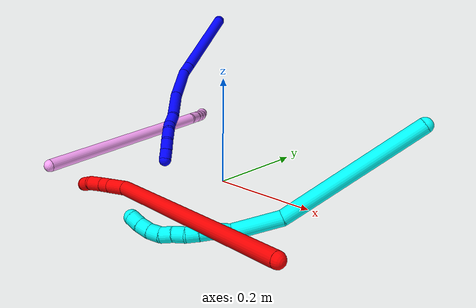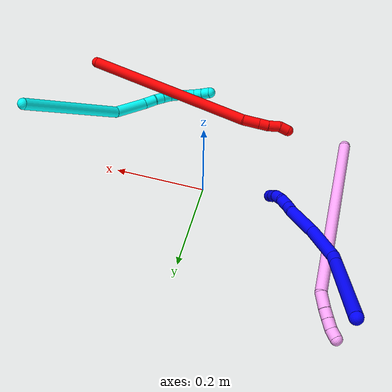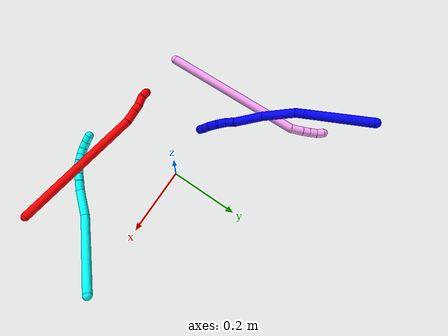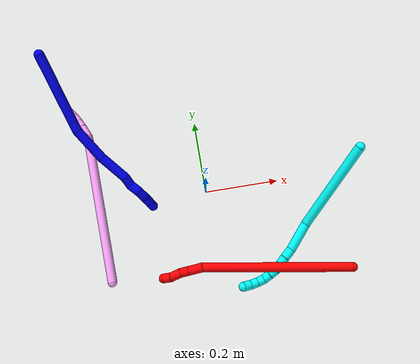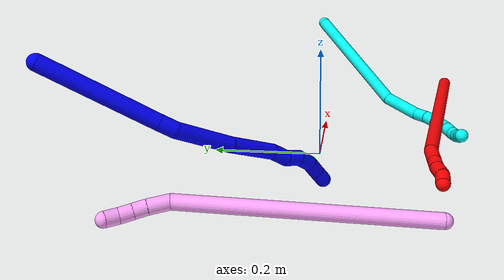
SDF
<sdf version="1.7">
 <world name="default">
  <plugin name="TubeGeneratorPlugin" filename="libtube_generator_plugin.so"/>
  <model name="photoneo_s_sensor">
   <static>1</static>
   <pose>0 0 2 1.57079 1.57079 3.14159</pose>
   <link name="link">
    <inertial><mass>0.1</mass></inertial>
    <sensor name="sensor" type="depth">
     <update_rate>30</update_rate>
     <camera>
      <horizontal_fov>1.22</horizontal_fov>
      <image><width>1920</width><height>1200</height><format>B8G8R8</format></image>
      <clip><near>0.1</near><far>4</far></clip>
      <depth_camera><output>points</output></depth_camera>
     </camera>
     <plugin name="camera_plugin" filename="libgazebo_ros_depth_camera.so">
      <baseline>0.2</baseline>
      <alwaysOn>1</alwaysOn>
      <updateRate>0.0</updateRate>
      <cameraName>camera_ir</cameraName>
      <imageTopicName>/camera/color/image_raw</imageTopicName>
      <cameraInfoTopicName>/camera/color/camera_info</cameraInfoTopicName>
      <depthImageTopicName>/camera/depth/image_raw</depthImageTopicName>
      <depthImageCameraInfoTopicName>/camera/depth/camera_info</depthImageCameraInfoTopicName>
      <pointCloudTopicName>/camera/depth/points</pointCloudTopicName>
      <frameName>fr_optical</frameName>
      <pointCloudCutoff>0.1</pointCloudCutoff>
      <pointCloudCutoffMax>2.0</pointCloudCutoffMax>
      <distortionK1>0</distortionK1>
      <distortionK2>0</distortionK2>
      <distortionK3>0</distortionK3>
      <distortionT1>0</distortionT1>
      <distortionT2>0</distortionT2>
      <CxPrime>0</CxPrime>
      <Cx>0</Cx>
      <Cy>0</Cy>
      <focalLength>0</focalLength>
      <hackBaseline>0</hackBaseline>
     </plugin>
    </sensor>
   </link>
  </model>
  <gravity>0 0 -9.8</gravity>
  <magnetic_field>6e-06 2.3e-05 -4.2e-05</magnetic_field>
  <atmosphere type="adiabatic"/>
  <physics name="default_physics" default="0" type="ode">
   <max_step_size>0.003</max_step_size>
   <real_time_factor>1</real_time_factor>
   <real_time_update_rate>1000</real_time_update_rate>
   <max_contacts>10000</max_contacts>
   <ode>
    <solver>
     <type>quick</type>
     <iters>100</iters>
     <sor>1.3</sor>
     <use_dynamic_moi_rescaling>0</use_dynamic_moi_rescaling>
    </solver>
    <constraints>
     <contact_max_correcting_vel>0</contact_max_correcting_vel>
     <contact_surface_layer>0.001</contact_surface_layer>
     <cfm>0</cfm>
     <erp>0.2</erp>
    </constraints>
   </ode>
  </physics>
  <scene><ambient>0.4 0.4 0.4 1</ambient><background>0.7 0.7 0.7 1</background><shadows>0</shadows></scene>
  <audio><device>default</device></audio>
  <spherical_coordinates>
   <surface_model>EARTH_WGS84</surface_model>
   <latitude_deg>0</latitude_deg>
   <longitude_deg>0</longitude_deg>
   <elevation>0</elevation>
   <heading_deg>0</heading_deg>
  </spherical_coordinates>
  <model name="bin">
   <static>1</static>
   <link name="bottom">
    <collision name="collision-bottom">
     <pose>0 0 -0.01 0 -0 0</pose>
     <geometry><box><size>0.8 0.6 0.02</size></box></geometry>
     <surface>
      <friction><ode><mu>100</mu><mu2>100</mu2></ode></friction>
      <contact><collide_bitmask>65535</collide_bitmask></contact>
     </surface>
    </collision>
   </link>
   <link name="west_wall">
    <collision name="collision-west_wall">
     <pose>-0.41 0 0.1 0 -0 0</pose>
     <geometry><box><size>0.02 0.6 0.2</size></box></geometry>
     <surface>
      <friction><ode><mu>100</mu><mu2>100</mu2></ode></friction>
      <contact><collide_bitmask>65535</collide_bitmask></contact>
     </surface>
    </collision>
   </link>
   <link name="east_wall">
    <collision name="collision-east_wall">
     <pose>0.41 0 0.1 0 -0 0</pose>
     <geometry><box><size>0.02 0.6 0.2</size></box></geometry>
     <surface>
      <friction><ode><mu>100</mu><mu2>100</mu2></ode></friction>
      <contact><collide_bitmask>65535</collide_bitmask></contact>
     </surface>
    </collision>
   </link>
   <link name="south_wall">
    <collision name="collision-south_wall">
     <pose>0 -0.31 0.1 0 -0 0</pose>
     <geometry><box><size>0.8 0.02 0.2</size></box></geometry>
     <surface>
      <friction><ode><mu>100</mu><mu2>100</mu2></ode></friction>
      <contact><collide_bitmask>65535</collide_bitmask></contact>
     </surface>
    </collision>
   </link>
   <link name="north_wall">
    <collision name="collision-north_wall">
     <pose>0 0.31 0.1 0 -0 0</pose>
     <geometry><box><size>0.8 0.02 0.2</size></box></geometry>
     <surface>
      <friction><ode><mu>100</mu><mu2>100</mu2></ode></friction>
      <contact><collide_bitmask>65535</collide_bitmask></contact>
     </surface>
    </collision>
   </link>
  </model>
  <model name="1">
   <static>0</static>
   <link name="1">
    <collision name="collision-cylinder-e_1_1_4">
     <pose>-0.060201 -0.0118 -0.066795 2.96674 -0.725888 -2.68795</pose>
     <geometry><cylinder><radius>0.0125</radius><length>0.181384</length></cylinder></geometry>
     <surface>
      <friction><ode><mu>1.16</mu><mu2>1.16</mu2><slip1>0</slip1><slip2>0</slip2></ode></friction>
      <contact><ode><kp>1e+06</kp><kd>1</kd><max_vel>0</max_vel><min_depth>0.001</min_depth></ode></contact>
     </surface>
    </collision>
    <visual name="visual-cylinder-e_1_1_4">
     <pose>-0.060201 -0.0118 -0.066795 2.96674 -0.725888 -2.68795</pose>
     <geometry><cylinder><radius>0.0125</radius><length>0.181384</length></cylinder></geometry>
     <material><ambient>0 0 1 1</ambient></material>
    </visual>
    <collision name="collision-cylinder-e_2_4_5">
     <pose>-0.129358 -0.025574 -0.143338 2.94168 -0.733058 -2.6305</pose>
     <geometry><cylinder><radius>0.0125</radius><length>0.026768</length></cylinder></geometry>
     <surface>
      <friction><ode><mu>1.16</mu><mu2>1.16</mu2><slip1>0</slip1><slip2>0</slip2></ode></friction>
      <contact><ode><kp>1e+06</kp><kd>1</kd><max_vel>0</max_vel><min_depth>0.001</min_depth></ode></contact>
     </surface>
    </collision>
    <visual name="visual-cylinder-e_2_4_5">
     <pose>-0.129358 -0.025574 -0.143338 2.94168 -0.733058 -2.6305</pose>
     <geometry><cylinder><radius>0.0125</radius><length>0.026768</length></cylinder></geometry>
     <material><ambient>0 0 1 1</ambient></material>
    </visual>
    <collision name="collision-cylinder-e_3_5_6">
     <pose>-0.162959 -0.046418 -0.186649 2.62946 -0.569361 -1.68183</pose>
     <geometry><cylinder><radius>0.0125</radius><length>0.091431</length></cylinder></geometry>
     <surface>
      <friction><ode><mu>1.16</mu><mu2>1.16</mu2><slip1>0</slip1><slip2>0</slip2></ode></friction>
      <contact><ode><kp>1e+06</kp><kd>1</kd><max_vel>0</max_vel><min_depth>0.001</min_depth></ode></contact>
     </surface>
    </collision>
    <visual name="visual-cylinder-e_3_5_6">
     <pose>-0.162959 -0.046418 -0.186649 2.62946 -0.569361 -1.68183</pose>
     <geometry><cylinder><radius>0.0125</radius><length>0.091431</length></cylinder></geometry>
     <material><ambient>0 0 1 1</ambient></material>
    </visual>
    <collision name="collision-cylinder-e_4_6_7">
     <pose>-0.205735 -0.085932 -0.248675 2.51401 -0.476094 -1.28409</pose>
     <geometry><cylinder><radius>0.0125</radius><length>0.079122</length></cylinder></geometry>
     <surface>
      <friction><ode><mu>1.16</mu><mu2>1.16</mu2><slip1>0</slip1><slip2>0</slip2></ode></friction>
      <contact><ode><kp>1e+06</kp><kd>1</kd><max_vel>0</max_vel><min_depth>0.001</min_depth></ode></contact>
     </surface>
    </collision>
    <visual name="visual-cylinder-e_4_6_7">
     <pose>-0.205735 -0.085932 -0.248675 2.51401 -0.476094 -1.28409</pose>
     <geometry><cylinder><radius>0.0125</radius><length>0.079122</length></cylinder></geometry>
     <material><ambient>0 0 1 1</ambient></material>
    </visual>
    <collision name="collision-cylinder-e_5_7_8">
     <pose>-0.23134 -0.109772 -0.287749 2.84935 -0.593353 -2.24424</pose>
     <geometry><cylinder><radius>0.0125</radius><length>0.026734</length></cylinder></geometry>
     <surface>
      <friction><ode><mu>1.16</mu><mu2>1.16</mu2><slip1>0</slip1><slip2>0</slip2></ode></friction>
      <contact><ode><kp>1e+06</kp><kd>1</kd><max_vel>0</max_vel><min_depth>0.001</min_depth></ode></contact>
     </surface>
    </collision>
    <visual name="visual-cylinder-e_5_7_8">
     <pose>-0.23134 -0.109772 -0.287749 2.84935 -0.593353 -2.24424</pose>
     <geometry><cylinder><radius>0.0125</radius><length>0.026734</length></cylinder></geometry>
     <material><ambient>0 0 1 1</ambient></material>
    </visual>
    <collision name="collision-cylinder-e_6_8_9">
     <pose>-0.244791 -0.120989 -0.305949 2.32821 -0.496013 -1.06297</pose>
     <geometry><cylinder><radius>0.0125</radius><length>0.025115</length></cylinder></geometry>
     <surface>
      <friction><ode><mu>1.16</mu><mu2>1.16</mu2><slip1>0</slip1><slip2>0</slip2></ode></friction>
      <contact><ode><kp>1e+06</kp><kd>1</kd><max_vel>0</max_vel><min_depth>0.001</min_depth></ode></contact>
     </surface>
    </collision>
    <visual name="visual-cylinder-e_6_8_9">
     <pose>-0.244791 -0.120989 -0.305949 2.32821 -0.496013 -1.06297</pose>
     <geometry><cylinder><radius>0.0125</radius><length>0.025115</length></cylinder></geometry>
     <material><ambient>0 0 1 1</ambient></material>
    </visual>
    <collision name="collision-cylinder-e_7_9_10">
     <pose>-0.25598 -0.133292 -0.324777 2.77796 -0.408971 -1.69097</pose>
     <geometry><cylinder><radius>0.0125</radius><length>0.026217</length></cylinder></geometry>
     <surface>
      <friction><ode><mu>1.16</mu><mu2>1.16</mu2><slip1>0</slip1><slip2>0</slip2></ode></friction>
      <contact><ode><kp>1e+06</kp><kd>1</kd><max_vel>0</max_vel><min_depth>0.001</min_depth></ode></contact>
     </surface>
    </collision>
    <visual name="visual-cylinder-e_7_9_10">
     <pose>-0.25598 -0.133292 -0.324777 2.77796 -0.408971 -1.69097</pose>
     <geometry><cylinder><radius>0.0125</radius><length>0.026217</length></cylinder></geometry>
     <material><ambient>0 0 1 1</ambient></material>
    </visual>
    <collision name="collision-cylinder-e_8_10_11">
     <pose>-0.264106 -0.138352 -0.346789 3.06906 -0.263524 -2.60715</pose>
     <geometry><cylinder><radius>0.0125</radius><length>0.022371</length></cylinder></geometry>
     <surface>
      <friction><ode><mu>1.16</mu><mu2>1.16</mu2><slip1>0</slip1><slip2>0</slip2></ode></friction>
      <contact><ode><kp>1e+06</kp><kd>1</kd><max_vel>0</max_vel><min_depth>0.001</min_depth></ode></contact>
     </surface>
    </collision>
    <visual name="visual-cylinder-e_8_10_11">
     <pose>-0.264106 -0.138352 -0.346789 3.06906 -0.263524 -2.60715</pose>
     <geometry><cylinder><radius>0.0125</radius><length>0.022371</length></cylinder></geometry>
     <material><ambient>0 0 1 1</ambient></material>
    </visual>
    <collision name="collision-cylinder-e_9_11_2">
     <pose>-0.270119 -0.139818 -0.367495 3.07294 -0.301704 -2.69723</pose>
     <geometry><cylinder><radius>0.0125</radius><length>0.020858</length></cylinder></geometry>
     <surface>
      <friction><ode><mu>1.16</mu><mu2>1.16</mu2><slip1>0</slip1><slip2>0</slip2></ode></friction>
      <contact><ode><kp>1e+06</kp><kd>1</kd><max_vel>0</max_vel><min_depth>0.001</min_depth></ode></contact>
     </surface>
    </collision>
    <visual name="visual-cylinder-e_9_11_2">
     <pose>-0.270119 -0.139818 -0.367495 3.07294 -0.301704 -2.69723</pose>
     <geometry><cylinder><radius>0.0125</radius><length>0.020858</length></cylinder></geometry>
     <material><ambient>0 0 1 1</ambient></material>
    </visual>
    <collision name="collision-sphere-2">
     <pose>-0.273218 -0.140501 -0.37743 0 -0 0</pose>
     <geometry><sphere><radius>0.0125</radius></sphere></geometry>
     <surface>
      <friction><ode><mu>1.16</mu><mu2>1.16</mu2><slip1>0</slip1><slip2>0</slip2></ode></friction>
      <contact><ode><kp>1e+06</kp><kd>1</kd><max_vel>0</max_vel><min_depth>0.001</min_depth></ode></contact>
     </surface>
    </collision>
    <visual name="visual-sphere-2">
     <pose>-0.273218 -0.140501 -0.37743 0 -0 0</pose>
     <geometry><sphere><radius>0.0125</radius></sphere></geometry>
     <material><ambient>0 0 1 1</ambient></material>
    </visual>
    <collision name="collision-sphere-11">
     <pose>-0.26702 -0.139135 -0.357561 0 -0 0</pose>
     <geometry><sphere><radius>0.0125</radius></sphere></geometry>
     <surface>
      <friction><ode><mu>1.16</mu><mu2>1.16</mu2><slip1>0</slip1><slip2>0</slip2></ode></friction>
      <contact><ode><kp>1e+06</kp><kd>1</kd><max_vel>0</max_vel><min_depth>0.001</min_depth></ode></contact>
     </surface>
    </collision>
    <visual name="visual-sphere-11">
     <pose>-0.26702 -0.139135 -0.357561 0 -0 0</pose>
     <geometry><sphere><radius>0.0125</radius></sphere></geometry>
     <material><ambient>0 0 1 1</ambient></material>
    </visual>
    <collision name="collision-sphere-10">
     <pose>-0.261193 -0.13757 -0.336018 0 -0 0</pose>
     <geometry><sphere><radius>0.0125</radius></sphere></geometry>
     <surface>
      <friction><ode><mu>1.16</mu><mu2>1.16</mu2><slip1>0</slip1><slip2>0</slip2></ode></friction>
      <contact><ode><kp>1e+06</kp><kd>1</kd><max_vel>0</max_vel><min_depth>0.001</min_depth></ode></contact>
     </surface>
    </collision>
    <visual name="visual-sphere-10">
     <pose>-0.261193 -0.13757 -0.336018 0 -0 0</pose>
     <geometry><sphere><radius>0.0125</radius></sphere></geometry>
     <material><ambient>0 0 1 1</ambient></material>
    </visual>
    <collision name="collision-sphere-9">
     <pose>-0.250767 -0.129014 -0.313537 0 -0 0</pose>
     <geometry><sphere><radius>0.0125</radius></sphere></geometry>
     <surface>
      <friction><ode><mu>1.16</mu><mu2>1.16</mu2><slip1>0</slip1><slip2>0</slip2></ode></friction>
      <contact><ode><kp>1e+06</kp><kd>1</kd><max_vel>0</max_vel><min_depth>0.001</min_depth></ode></contact>
     </surface>
    </collision>
    <visual name="visual-sphere-9">
     <pose>-0.250767 -0.129014 -0.313537 0 -0 0</pose>
     <geometry><sphere><radius>0.0125</radius></sphere></geometry>
     <material><ambient>0 0 1 1</ambient></material>
    </visual>
    <collision name="collision-sphere-4">
     <pose>-0.120402 -0.023599 -0.13359 0 -0 0</pose>
     <geometry><sphere><radius>0.0125</radius></sphere></geometry>
     <surface>
      <friction><ode><mu>1.16</mu><mu2>1.16</mu2><slip1>0</slip1><slip2>0</slip2></ode></friction>
      <contact><ode><kp>1e+06</kp><kd>1</kd><max_vel>0</max_vel><min_depth>0.001</min_depth></ode></contact>
     </surface>
    </collision>
    <visual name="visual-sphere-4">
     <pose>-0.120402 -0.023599 -0.13359 0 -0 0</pose>
     <geometry><sphere><radius>0.0125</radius></sphere></geometry>
     <material><ambient>0 0 1 1</ambient></material>
    </visual>
    <collision name="collision-sphere-1">
     <geometry><sphere><radius>0.0125</radius></sphere></geometry>
     <surface>
      <friction><ode><mu>1.16</mu><mu2>1.16</mu2><slip1>0</slip1><slip2>0</slip2></ode></friction>
      <contact><ode><kp>1e+06</kp><kd>1</kd><max_vel>0</max_vel><min_depth>0.001</min_depth></ode></contact>
     </surface>
    </collision>
    <visual name="visual-sphere-1">
     <geometry><sphere><radius>0.0125</radius></sphere></geometry>
     <material><ambient>0 0 1 1</ambient></material>
    </visual>
    <collision name="collision-sphere-8">
     <pose>-0.238815 -0.112965 -0.298361 0 -0 0</pose>
     <geometry><sphere><radius>0.0125</radius></sphere></geometry>
     <surface>
      <friction><ode><mu>1.16</mu><mu2>1.16</mu2><slip1>0</slip1><slip2>0</slip2></ode></friction>
      <contact><ode><kp>1e+06</kp><kd>1</kd><max_vel>0</max_vel><min_depth>0.001</min_depth></ode></contact>
     </surface>
    </collision>
    <visual name="visual-sphere-8">
     <pose>-0.238815 -0.112965 -0.298361 0 -0 0</pose>
     <geometry><sphere><radius>0.0125</radius></sphere></geometry>
     <material><ambient>0 0 1 1</ambient></material>
    </visual>
    <collision name="collision-sphere-5">
     <pose>-0.138314 -0.027549 -0.153086 0 -0 0</pose>
     <geometry><sphere><radius>0.0125</radius></sphere></geometry>
     <surface>
      <friction><ode><mu>1.16</mu><mu2>1.16</mu2><slip1>0</slip1><slip2>0</slip2></ode></friction>
      <contact><ode><kp>1e+06</kp><kd>1</kd><max_vel>0</max_vel><min_depth>0.001</min_depth></ode></contact>
     </surface>
    </collision>
    <visual name="visual-sphere-5">
     <pose>-0.138314 -0.027549 -0.153086 0 -0 0</pose>
     <geometry><sphere><radius>0.0125</radius></sphere></geometry>
     <material><ambient>0 0 1 1</ambient></material>
    </visual>
    <collision name="collision-sphere-6">
     <pose>-0.187604 -0.065286 -0.220213 0 -0 0</pose>
     <geometry><sphere><radius>0.0125</radius></sphere></geometry>
     <surface>
      <friction><ode><mu>1.16</mu><mu2>1.16</mu2><slip1>0</slip1><slip2>0</slip2></ode></friction>
      <contact><ode><kp>1e+06</kp><kd>1</kd><max_vel>0</max_vel><min_depth>0.001</min_depth></ode></contact>
     </surface>
    </collision>
    <visual name="visual-sphere-6">
     <pose>-0.187604 -0.065286 -0.220213 0 -0 0</pose>
     <geometry><sphere><radius>0.0125</radius></sphere></geometry>
     <material><ambient>0 0 1 1</ambient></material>
    </visual>
    <collision name="collision-sphere-7">
     <pose>-0.223866 -0.106579 -0.277136 0 -0 0</pose>
     <geometry><sphere><radius>0.0125</radius></sphere></geometry>
     <surface>
      <friction><ode><mu>1.16</mu><mu2>1.16</mu2><slip1>0</slip1><slip2>0</slip2></ode></friction>
      <contact><ode><kp>1e+06</kp><kd>1</kd><max_vel>0</max_vel><min_depth>0.001</min_depth></ode></contact>
     </surface>
    </collision>
    <visual name="visual-sphere-7">
     <pose>-0.223866 -0.106579 -0.277136 0 -0 0</pose>
     <geometry><sphere><radius>0.0125</radius></sphere></geometry>
     <material><ambient>0 0 1 1</ambient></material>
    </visual>
    <inertial>
     <pose>-0.152292 -0.058695 -0.184017 0 -0 0</pose>
     <mass>0.5</mass>
     <inertia>
      <ixx>-0.000628</ixx>
      <ixy>0</ixy>
      <ixz>0</ixz>
      <iyy>0.000227</iyy>
      <iyz>0</iyz>
      <izz>0.000488</izz>
     </inertia>
    </inertial>
   </link>
   <pose>-0.350702 0.357313 0.249099 -0.469916 0.122059 1.29734</pose>
  </model>
  <model name="2">
   <static>0</static>
   <link name="2">
    <collision name="collision-cylinder-e_1_1_4">
     <pose>-0.018978 -0.015448 -0.19371 3.06201 -0.097352 -1.77127</pose>
     <geometry><cylinder><radius>0.0125</radius><length>0.3905</length></cylinder></geometry>
     <surface>
      <friction><ode><mu>1.16</mu><mu2>1.16</mu2><slip1>0</slip1><slip2>0</slip2></ode></friction>
      <contact><ode><kp>1e+06</kp><kd>1</kd><max_vel>0</max_vel><min_depth>0.001</min_depth></ode></contact>
     </surface>
    </collision>
    <visual name="visual-cylinder-e_1_1_4">
     <pose>-0.018978 -0.015448 -0.19371 3.06201 -0.097352 -1.77127</pose>
     <geometry><cylinder><radius>0.0125</radius><length>0.3905</length></cylinder></geometry>
     <material><ambient>1 0 0 1</ambient></material>
    </visual>
    <collision name="collision-cylinder-e_2_4_5">
     <pose>-0.041378 -0.02791 -0.406144 -2.98343 -0.178553 1.69235</pose>
     <geometry><cylinder><radius>0.0125</radius><length>0.038532</length></cylinder></geometry>
     <surface>
      <friction><ode><mu>1.16</mu><mu2>1.16</mu2><slip1>0</slip1><slip2>0</slip2></ode></friction>
      <contact><ode><kp>1e+06</kp><kd>1</kd><max_vel>0</max_vel><min_depth>0.001</min_depth></ode></contact>
     </surface>
    </collision>
    <visual name="visual-cylinder-e_2_4_5">
     <pose>-0.041378 -0.02791 -0.406144 -2.98343 -0.178553 1.69235</pose>
     <geometry><cylinder><radius>0.0125</radius><length>0.038532</length></cylinder></geometry>
     <material><ambient>1 0 0 1</ambient></material>
    </visual>
    <collision name="collision-cylinder-e_3_5_6">
     <pose>-0.046714 -0.02324 -0.435592 -2.98583 -0.174545 1.68491</pose>
     <geometry><cylinder><radius>0.0125</radius><length>0.022047</length></cylinder></geometry>
     <surface>
      <friction><ode><mu>1.16</mu><mu2>1.16</mu2><slip1>0</slip1><slip2>0</slip2></ode></friction>
      <contact><ode><kp>1e+06</kp><kd>1</kd><max_vel>0</max_vel><min_depth>0.001</min_depth></ode></contact>
     </surface>
    </collision>
    <visual name="visual-cylinder-e_3_5_6">
     <pose>-0.046714 -0.02324 -0.435592 -2.98583 -0.174545 1.68491</pose>
     <geometry><cylinder><radius>0.0125</radius><length>0.022047</length></cylinder></geometry>
     <material><ambient>1 0 0 1</ambient></material>
    </visual>
    <collision name="collision-cylinder-e_4_6_7">
     <pose>-0.050467 -0.016963 -0.45912 -2.79718 -0.134404 0.738428</pose>
     <geometry><cylinder><radius>0.0125</radius><length>0.027451</length></cylinder></geometry>
     <surface>
      <friction><ode><mu>1.16</mu><mu2>1.16</mu2><slip1>0</slip1><slip2>0</slip2></ode></friction>
      <contact><ode><kp>1e+06</kp><kd>1</kd><max_vel>0</max_vel><min_depth>0.001</min_depth></ode></contact>
     </surface>
    </collision>
    <visual name="visual-cylinder-e_4_6_7">
     <pose>-0.050467 -0.016963 -0.45912 -2.79718 -0.134404 0.738428</pose>
     <geometry><cylinder><radius>0.0125</radius><length>0.027451</length></cylinder></geometry>
     <material><ambient>1 0 0 1</ambient></material>
    </visual>
    <collision name="collision-cylinder-e_5_7_2">
     <pose>-0.056359 -0.012053 -0.481858 -3.10965 -0.387045 2.97896</pose>
     <geometry><cylinder><radius>0.0125</radius><length>0.021469</length></cylinder></geometry>
     <surface>
      <friction><ode><mu>1.16</mu><mu2>1.16</mu2><slip1>0</slip1><slip2>0</slip2></ode></friction>
      <contact><ode><kp>1e+06</kp><kd>1</kd><max_vel>0</max_vel><min_depth>0.001</min_depth></ode></contact>
     </surface>
    </collision>
    <visual name="visual-cylinder-e_5_7_2">
     <pose>-0.056359 -0.012053 -0.481858 -3.10965 -0.387045 2.97896</pose>
     <geometry><cylinder><radius>0.0125</radius><length>0.021469</length></cylinder></geometry>
     <material><ambient>1 0 0 1</ambient></material>
    </visual>
    <collision name="collision-sphere-2">
     <pose>-0.06041 -0.011736 -0.491794 0 -0 0</pose>
     <geometry><sphere><radius>0.0125</radius></sphere></geometry>
     <surface>
      <friction><ode><mu>1.16</mu><mu2>1.16</mu2><slip1>0</slip1><slip2>0</slip2></ode></friction>
      <contact><ode><kp>1e+06</kp><kd>1</kd><max_vel>0</max_vel><min_depth>0.001</min_depth></ode></contact>
     </surface>
    </collision>
    <visual name="visual-sphere-2">
     <pose>-0.06041 -0.011736 -0.491794 0 -0 0</pose>
     <geometry><sphere><radius>0.0125</radius></sphere></geometry>
     <material><ambient>1 0 0 1</ambient></material>
    </visual>
    <collision name="collision-sphere-7">
     <pose>-0.052307 -0.012371 -0.471923 0 -0 0</pose>
     <geometry><sphere><radius>0.0125</radius></sphere></geometry>
     <surface>
      <friction><ode><mu>1.16</mu><mu2>1.16</mu2><slip1>0</slip1><slip2>0</slip2></ode></friction>
      <contact><ode><kp>1e+06</kp><kd>1</kd><max_vel>0</max_vel><min_depth>0.001</min_depth></ode></contact>
     </surface>
    </collision>
    <visual name="visual-sphere-7">
     <pose>-0.052307 -0.012371 -0.471923 0 -0 0</pose>
     <geometry><sphere><radius>0.0125</radius></sphere></geometry>
     <material><ambient>1 0 0 1</ambient></material>
    </visual>
    <collision name="collision-sphere-6">
     <pose>-0.048628 -0.021556 -0.446317 0 -0 0</pose>
     <geometry><sphere><radius>0.0125</radius></sphere></geometry>
     <surface>
      <friction><ode><mu>1.16</mu><mu2>1.16</mu2><slip1>0</slip1><slip2>0</slip2></ode></friction>
      <contact><ode><kp>1e+06</kp><kd>1</kd><max_vel>0</max_vel><min_depth>0.001</min_depth></ode></contact>
     </surface>
    </collision>
    <visual name="visual-sphere-6">
     <pose>-0.048628 -0.021556 -0.446317 0 -0 0</pose>
     <geometry><sphere><radius>0.0125</radius></sphere></geometry>
     <material><ambient>1 0 0 1</ambient></material>
    </visual>
    <collision name="collision-sphere-5">
     <pose>-0.0448 -0.024924 -0.424867 0 -0 0</pose>
     <geometry><sphere><radius>0.0125</radius></sphere></geometry>
     <surface>
      <friction><ode><mu>1.16</mu><mu2>1.16</mu2><slip1>0</slip1><slip2>0</slip2></ode></friction>
      <contact><ode><kp>1e+06</kp><kd>1</kd><max_vel>0</max_vel><min_depth>0.001</min_depth></ode></contact>
     </surface>
    </collision>
    <visual name="visual-sphere-5">
     <pose>-0.0448 -0.024924 -0.424867 0 -0 0</pose>
     <geometry><sphere><radius>0.0125</radius></sphere></geometry>
     <material><ambient>1 0 0 1</ambient></material>
    </visual>
    <collision name="collision-sphere-1">
     <geometry><sphere><radius>0.0125</radius></sphere></geometry>
     <surface>
      <friction><ode><mu>1.16</mu><mu2>1.16</mu2><slip1>0</slip1><slip2>0</slip2></ode></friction>
      <contact><ode><kp>1e+06</kp><kd>1</kd><max_vel>0</max_vel><min_depth>0.001</min_depth></ode></contact>
     </surface>
    </collision>
    <visual name="visual-sphere-1">
     <geometry><sphere><radius>0.0125</radius></sphere></geometry>
     <material><ambient>1 0 0 1</ambient></material>
    </visual>
    <collision name="collision-sphere-4">
     <pose>-0.037956 -0.030896 -0.387421 0 -0 0</pose>
     <geometry><sphere><radius>0.0125</radius></sphere></geometry>
     <surface>
      <friction><ode><mu>1.16</mu><mu2>1.16</mu2><slip1>0</slip1><slip2>0</slip2></ode></friction>
      <contact><ode><kp>1e+06</kp><kd>1</kd><max_vel>0</max_vel><min_depth>0.001</min_depth></ode></contact>
     </surface>
    </collision>
    <visual name="visual-sphere-4">
     <pose>-0.037956 -0.030896 -0.387421 0 -0 0</pose>
     <geometry><sphere><radius>0.0125</radius></sphere></geometry>
     <material><ambient>1 0 0 1</ambient></material>
    </visual>
    <inertial>
     <pose>-0.025261 -0.01669 -0.247691 0 -0 0</pose>
     <mass>0.5</mass>
     <inertia>
      <ixx>-0.005836</ixx>
      <ixy>0</ixy>
      <ixz>0</ixz>
      <iyy>-0.003819</iyy>
      <iyz>0</iyz>
      <izz>0.000839</izz>
     </inertia>
    </inertial>
   </link>
   <pose>0.342555 -0.264782 0.055402 2.09764 -1.49756 0.955053</pose>
  </model>
  <model name="3">
   <static>0</static>
   <link name="3">
    <collision name="collision-cylinder-e_1_1_4">
     <pose>-0.089358 -0.087679 7.6e-05 1.56993 -0.794879 -0.794257</pose>
     <geometry><cylinder><radius>0.0125</radius><length>0.250379</length></cylinder></geometry>
     <surface>
      <friction><ode><mu>1.16</mu><mu2>1.16</mu2><slip1>0</slip1><slip2>0</slip2></ode></friction>
      <contact><ode><kp>1e+06</kp><kd>1</kd><max_vel>0</max_vel><min_depth>0.001</min_depth></ode></contact>
     </surface>
    </collision>
    <visual name="visual-cylinder-e_1_1_4">
     <pose>-0.089358 -0.087679 7.6e-05 1.56993 -0.794879 -0.794257</pose>
     <geometry><cylinder><radius>0.0125</radius><length>0.250379</length></cylinder></geometry>
     <material><ambient>0.003922 1 0.996078 1</ambient></material>
    </visual>
    <collision name="collision-cylinder-e_2_4_5">
     <pose>-0.214852 -0.191668 0.005107 1.27588 -1.13003 -0.878694</pose>
     <geometry><cylinder><radius>0.0125</radius><length>0.079911</length></cylinder></geometry>
     <surface>
      <friction><ode><mu>1.16</mu><mu2>1.16</mu2><slip1>0</slip1><slip2>0</slip2></ode></friction>
      <contact><ode><kp>1e+06</kp><kd>1</kd><max_vel>0</max_vel><min_depth>0.001</min_depth></ode></contact>
     </surface>
    </collision>
    <visual name="visual-cylinder-e_2_4_5">
     <pose>-0.214852 -0.191668 0.005107 1.27588 -1.13003 -0.878694</pose>
     <geometry><cylinder><radius>0.0125</radius><length>0.079911</length></cylinder></geometry>
     <material><ambient>0.003922 1 0.996078 1</ambient></material>
    </visual>
    <collision name="collision-cylinder-e_3_5_6">
     <pose>-0.264729 -0.210202 0.010316 1.45701 -1.40933 -1.29804</pose>
     <geometry><cylinder><radius>0.0125</radius><length>0.027844</length></cylinder></geometry>
     <surface>
      <friction><ode><mu>1.16</mu><mu2>1.16</mu2><slip1>0</slip1><slip2>0</slip2></ode></friction>
      <contact><ode><kp>1e+06</kp><kd>1</kd><max_vel>0</max_vel><min_depth>0.001</min_depth></ode></contact>
     </surface>
    </collision>
    <visual name="visual-cylinder-e_3_5_6">
     <pose>-0.264729 -0.210202 0.010316 1.45701 -1.40933 -1.29804</pose>
     <geometry><cylinder><radius>0.0125</radius><length>0.027844</length></cylinder></geometry>
     <material><ambient>0.003922 1 0.996078 1</ambient></material>
    </visual>
    <collision name="collision-cylinder-e_4_6_7">
     <pose>-0.288055 -0.215715 0.010941 1.45863 -1.23826 -1.13413</pose>
     <geometry><cylinder><radius>0.0125</radius><length>0.020279</length></cylinder></geometry>
     <surface>
      <friction><ode><mu>1.16</mu><mu2>1.16</mu2><slip1>0</slip1><slip2>0</slip2></ode></friction>
      <contact><ode><kp>1e+06</kp><kd>1</kd><max_vel>0</max_vel><min_depth>0.001</min_depth></ode></contact>
     </surface>
    </collision>
    <visual name="visual-cylinder-e_4_6_7">
     <pose>-0.288055 -0.215715 0.010941 1.45863 -1.23826 -1.13413</pose>
     <geometry><cylinder><radius>0.0125</radius><length>0.020279</length></cylinder></geometry>
     <material><ambient>0.003922 1 0.996078 1</ambient></material>
    </visual>
    <collision name="collision-cylinder-e_5_7_8">
     <pose>-0.307414 -0.222054 0.011359 1.55498 -1.26838 -1.25331</pose>
     <geometry><cylinder><radius>0.0125</radius><length>0.020479</length></cylinder></geometry>
     <surface>
      <friction><ode><mu>1.16</mu><mu2>1.16</mu2><slip1>0</slip1><slip2>0</slip2></ode></friction>
      <contact><ode><kp>1e+06</kp><kd>1</kd><max_vel>0</max_vel><min_depth>0.001</min_depth></ode></contact>
     </surface>
    </collision>
    <visual name="visual-cylinder-e_5_7_8">
     <pose>-0.307414 -0.222054 0.011359 1.55498 -1.26838 -1.25331</pose>
     <geometry><cylinder><radius>0.0125</radius><length>0.020479</length></cylinder></geometry>
     <material><ambient>0.003922 1 0.996078 1</ambient></material>
    </visual>
    <collision name="collision-cylinder-e_6_8_9">
     <pose>-0.326711 -0.227127 0.009087 2.42457 -1.25803 -2.19047</pose>
     <geometry><cylinder><radius>0.0125</radius><length>0.020016</length></cylinder></geometry>
     <surface>
      <friction><ode><mu>1.16</mu><mu2>1.16</mu2><slip1>0</slip1><slip2>0</slip2></ode></friction>
      <contact><ode><kp>1e+06</kp><kd>1</kd><max_vel>0</max_vel><min_depth>0.001</min_depth></ode></contact>
     </surface>
    </collision>
    <visual name="visual-cylinder-e_6_8_9">
     <pose>-0.326711 -0.227127 0.009087 2.42457 -1.25803 -2.19047</pose>
     <geometry><cylinder><radius>0.0125</radius><length>0.020016</length></cylinder></geometry>
     <material><ambient>0.003922 1 0.996078 1</ambient></material>
    </visual>
    <collision name="collision-cylinder-e_7_9_10">
     <pose>-0.345321 -0.232356 0.004063 2.27116 -1.13855 -1.88495</pose>
     <geometry><cylinder><radius>0.0125</radius><length>0.020015</length></cylinder></geometry>
     <surface>
      <friction><ode><mu>1.16</mu><mu2>1.16</mu2><slip1>0</slip1><slip2>0</slip2></ode></friction>
      <contact><ode><kp>1e+06</kp><kd>1</kd><max_vel>0</max_vel><min_depth>0.001</min_depth></ode></contact>
     </surface>
    </collision>
    <visual name="visual-cylinder-e_7_9_10">
     <pose>-0.345321 -0.232356 0.004063 2.27116 -1.13855 -1.88495</pose>
     <geometry><cylinder><radius>0.0125</radius><length>0.020015</length></cylinder></geometry>
     <material><ambient>0.003922 1 0.996078 1</ambient></material>
    </visual>
    <collision name="collision-cylinder-e_8_10_11">
     <pose>-0.363822 -0.235642 -0.002897 3.12256 -1.14595 -3.1121</pose>
     <geometry><cylinder><radius>0.0125</radius><length>0.020666</length></cylinder></geometry>
     <surface>
      <friction><ode><mu>1.16</mu><mu2>1.16</mu2><slip1>0</slip1><slip2>0</slip2></ode></friction>
      <contact><ode><kp>1e+06</kp><kd>1</kd><max_vel>0</max_vel><min_depth>0.001</min_depth></ode></contact>
     </surface>
    </collision>
    <visual name="visual-cylinder-e_8_10_11">
     <pose>-0.363822 -0.235642 -0.002897 3.12256 -1.14595 -3.1121</pose>
     <geometry><cylinder><radius>0.0125</radius><length>0.020666</length></cylinder></geometry>
     <material><ambient>0.003922 1 0.996078 1</ambient></material>
    </visual>
    <collision name="collision-cylinder-e_9_11_12">
     <pose>-0.38198 -0.23368 -0.011774 -2.72506 -1.04697 2.43965</pose>
     <geometry><cylinder><radius>0.0125</radius><length>0.020196</length></cylinder></geometry>
     <surface>
      <friction><ode><mu>1.16</mu><mu2>1.16</mu2><slip1>0</slip1><slip2>0</slip2></ode></friction>
      <contact><ode><kp>1e+06</kp><kd>1</kd><max_vel>0</max_vel><min_depth>0.001</min_depth></ode></contact>
     </surface>
    </collision>
    <visual name="visual-cylinder-e_9_11_12">
     <pose>-0.38198 -0.23368 -0.011774 -2.72506 -1.04697 2.43965</pose>
     <geometry><cylinder><radius>0.0125</radius><length>0.020196</length></cylinder></geometry>
     <material><ambient>0.003922 1 0.996078 1</ambient></material>
    </visual>
    <collision name="collision-cylinder-e_10_12_2">
     <pose>-0.398855 -0.228343 -0.021414 -2.56101 -0.934696 2.0726</pose>
     <geometry><cylinder><radius>0.0125</radius><length>0.020215</length></cylinder></geometry>
     <surface>
      <friction><ode><mu>1.16</mu><mu2>1.16</mu2><slip1>0</slip1><slip2>0</slip2></ode></friction>
      <contact><ode><kp>1e+06</kp><kd>1</kd><max_vel>0</max_vel><min_depth>0.001</min_depth></ode></contact>
     </surface>
    </collision>
    <visual name="visual-cylinder-e_10_12_2">
     <pose>-0.398855 -0.228343 -0.021414 -2.56101 -0.934696 2.0726</pose>
     <geometry><cylinder><radius>0.0125</radius><length>0.020215</length></cylinder></geometry>
     <material><ambient>0.003922 1 0.996078 1</ambient></material>
    </visual>
    <collision name="collision-sphere-2">
     <pose>-0.406986 -0.225049 -0.026434 0 -0 0</pose>
     <geometry><sphere><radius>0.0125</radius></sphere></geometry>
     <surface>
      <friction><ode><mu>1.16</mu><mu2>1.16</mu2><slip1>0</slip1><slip2>0</slip2></ode></friction>
      <contact><ode><kp>1e+06</kp><kd>1</kd><max_vel>0</max_vel><min_depth>0.001</min_depth></ode></contact>
     </surface>
    </collision>
    <visual name="visual-sphere-2">
     <pose>-0.406986 -0.225049 -0.026434 0 -0 0</pose>
     <geometry><sphere><radius>0.0125</radius></sphere></geometry>
     <material><ambient>0.003922 1 0.996078 1</ambient></material>
    </visual>
    <collision name="collision-sphere-12">
     <pose>-0.390724 -0.231636 -0.016393 0 -0 0</pose>
     <geometry><sphere><radius>0.0125</radius></sphere></geometry>
     <surface>
      <friction><ode><mu>1.16</mu><mu2>1.16</mu2><slip1>0</slip1><slip2>0</slip2></ode></friction>
      <contact><ode><kp>1e+06</kp><kd>1</kd><max_vel>0</max_vel><min_depth>0.001</min_depth></ode></contact>
     </surface>
    </collision>
    <visual name="visual-sphere-12">
     <pose>-0.390724 -0.231636 -0.016393 0 -0 0</pose>
     <geometry><sphere><radius>0.0125</radius></sphere></geometry>
     <material><ambient>0.003922 1 0.996078 1</ambient></material>
    </visual>
    <collision name="collision-sphere-11">
     <pose>-0.373237 -0.235723 -0.007155 0 -0 0</pose>
     <geometry><sphere><radius>0.0125</radius></sphere></geometry>
     <surface>
      <friction><ode><mu>1.16</mu><mu2>1.16</mu2><slip1>0</slip1><slip2>0</slip2></ode></friction>
      <contact><ode><kp>1e+06</kp><kd>1</kd><max_vel>0</max_vel><min_depth>0.001</min_depth></ode></contact>
     </surface>
    </collision>
    <visual name="visual-sphere-11">
     <pose>-0.373237 -0.235723 -0.007155 0 -0 0</pose>
     <geometry><sphere><radius>0.0125</radius></sphere></geometry>
     <material><ambient>0.003922 1 0.996078 1</ambient></material>
    </visual>
    <collision name="collision-sphere-10">
     <pose>-0.354408 -0.235561 0.001362 0 -0 0</pose>
     <geometry><sphere><radius>0.0125</radius></sphere></geometry>
     <surface>
      <friction><ode><mu>1.16</mu><mu2>1.16</mu2><slip1>0</slip1><slip2>0</slip2></ode></friction>
      <contact><ode><kp>1e+06</kp><kd>1</kd><max_vel>0</max_vel><min_depth>0.001</min_depth></ode></contact>
     </surface>
    </collision>
    <visual name="visual-sphere-10">
     <pose>-0.354408 -0.235561 0.001362 0 -0 0</pose>
     <geometry><sphere><radius>0.0125</radius></sphere></geometry>
     <material><ambient>0.003922 1 0.996078 1</ambient></material>
    </visual>
    <collision name="collision-sphere-9">
     <pose>-0.336234 -0.22915 0.006765 0 -0 0</pose>
     <geometry><sphere><radius>0.0125</radius></sphere></geometry>
     <surface>
      <friction><ode><mu>1.16</mu><mu2>1.16</mu2><slip1>0</slip1><slip2>0</slip2></ode></friction>
      <contact><ode><kp>1e+06</kp><kd>1</kd><max_vel>0</max_vel><min_depth>0.001</min_depth></ode></contact>
     </surface>
    </collision>
    <visual name="visual-sphere-9">
     <pose>-0.336234 -0.22915 0.006765 0 -0 0</pose>
     <geometry><sphere><radius>0.0125</radius></sphere></geometry>
     <material><ambient>0.003922 1 0.996078 1</ambient></material>
    </visual>
    <collision name="collision-sphere-4">
     <pose>-0.178715 -0.175358 0.000153 0 -0 0</pose>
     <geometry><sphere><radius>0.0125</radius></sphere></geometry>
     <surface>
      <friction><ode><mu>1.16</mu><mu2>1.16</mu2><slip1>0</slip1><slip2>0</slip2></ode></friction>
      <contact><ode><kp>1e+06</kp><kd>1</kd><max_vel>0</max_vel><min_depth>0.001</min_depth></ode></contact>
     </surface>
    </collision>
    <visual name="visual-sphere-4">
     <pose>-0.178715 -0.175358 0.000153 0 -0 0</pose>
     <geometry><sphere><radius>0.0125</radius></sphere></geometry>
     <material><ambient>0.003922 1 0.996078 1</ambient></material>
    </visual>
    <collision name="collision-sphere-1">
     <geometry><sphere><radius>0.0125</radius></sphere></geometry>
     <surface>
      <friction><ode><mu>1.16</mu><mu2>1.16</mu2><slip1>0</slip1><slip2>0</slip2></ode></friction>
      <contact><ode><kp>1e+06</kp><kd>1</kd><max_vel>0</max_vel><min_depth>0.001</min_depth></ode></contact>
     </surface>
    </collision>
    <visual name="visual-sphere-1">
     <geometry><sphere><radius>0.0125</radius></sphere></geometry>
     <material><ambient>0.003922 1 0.996078 1</ambient></material>
    </visual>
    <collision name="collision-sphere-8">
     <pose>-0.317189 -0.225103 0.011408 0 -0 0</pose>
     <geometry><sphere><radius>0.0125</radius></sphere></geometry>
     <surface>
      <friction><ode><mu>1.16</mu><mu2>1.16</mu2><slip1>0</slip1><slip2>0</slip2></ode></friction>
      <contact><ode><kp>1e+06</kp><kd>1</kd><max_vel>0</max_vel><min_depth>0.001</min_depth></ode></contact>
     </surface>
    </collision>
    <visual name="visual-sphere-8">
     <pose>-0.317189 -0.225103 0.011408 0 -0 0</pose>
     <geometry><sphere><radius>0.0125</radius></sphere></geometry>
     <material><ambient>0.003922 1 0.996078 1</ambient></material>
    </visual>
    <collision name="collision-sphere-5">
     <pose>-0.250988 -0.207979 0.010062 0 -0 0</pose>
     <geometry><sphere><radius>0.0125</radius></sphere></geometry>
     <surface>
      <friction><ode><mu>1.16</mu><mu2>1.16</mu2><slip1>0</slip1><slip2>0</slip2></ode></friction>
      <contact><ode><kp>1e+06</kp><kd>1</kd><max_vel>0</max_vel><min_depth>0.001</min_depth></ode></contact>
     </surface>
    </collision>
    <visual name="visual-sphere-5">
     <pose>-0.250988 -0.207979 0.010062 0 -0 0</pose>
     <geometry><sphere><radius>0.0125</radius></sphere></geometry>
     <material><ambient>0.003922 1 0.996078 1</ambient></material>
    </visual>
    <collision name="collision-sphere-6">
     <pose>-0.27847 -0.212426 0.01057 0 -0 0</pose>
     <geometry><sphere><radius>0.0125</radius></sphere></geometry>
     <surface>
      <friction><ode><mu>1.16</mu><mu2>1.16</mu2><slip1>0</slip1><slip2>0</slip2></ode></friction>
      <contact><ode><kp>1e+06</kp><kd>1</kd><max_vel>0</max_vel><min_depth>0.001</min_depth></ode></contact>
     </surface>
    </collision>
    <visual name="visual-sphere-6">
     <pose>-0.27847 -0.212426 0.01057 0 -0 0</pose>
     <geometry><sphere><radius>0.0125</radius></sphere></geometry>
     <material><ambient>0.003922 1 0.996078 1</ambient></material>
    </visual>
    <collision name="collision-sphere-7">
     <pose>-0.297639 -0.219005 0.011311 0 -0 0</pose>
     <geometry><sphere><radius>0.0125</radius></sphere></geometry>
     <surface>
      <friction><ode><mu>1.16</mu><mu2>1.16</mu2><slip1>0</slip1><slip2>0</slip2></ode></friction>
      <contact><ode><kp>1e+06</kp><kd>1</kd><max_vel>0</max_vel><min_depth>0.001</min_depth></ode></contact>
     </surface>
    </collision>
    <visual name="visual-sphere-7">
     <pose>-0.297639 -0.219005 0.011311 0 -0 0</pose>
     <geometry><sphere><radius>0.0125</radius></sphere></geometry>
     <material><ambient>0.003922 1 0.996078 1</ambient></material>
    </visual>
    <inertial>
     <pose>-0.191595 -0.150892 0.001403 0 -0 0</pose>
     <mass>0.5</mass>
     <inertia>
      <ixx>-4.9e-05</ixx>
      <ixy>0</ixy>
      <ixz>0</ixz>
      <iyy>3.1e-05</iyy>
      <iyz>0</iyz>
      <izz>0.001935</izz>
     </inertia>
    </inertial>
   </link>
   <pose>0.388503 0.018078 0.183815 1.42086 0.16373 0.693967</pose>
  </model>
  <model name="4">
   <static>0</static>
   <link name="4">
    <collision name="collision-cylinder-e_1_1_4">
     <pose>-0.097425 0.118194 0.130064 -0.737623 -0.506177 0.199261</pose>
     <geometry><cylinder><radius>0.0125</radius><length>0.401887</length></cylinder></geometry>
     <surface>
      <friction><ode><mu>1.16</mu><mu2>1.16</mu2><slip1>0</slip1><slip2>0</slip2></ode></friction>
      <contact><ode><kp>1e+06</kp><kd>1</kd><max_vel>0</max_vel><min_depth>0.001</min_depth></ode></contact>
     </surface>
    </collision>
    <visual name="visual-cylinder-e_1_1_4">
     <pose>-0.097425 0.118194 0.130064 -0.737623 -0.506177 0.199261</pose>
     <geometry><cylinder><radius>0.0125</radius><length>0.401887</length></cylinder></geometry>
     <material><ambient>1 0.65098 0.996078 1</ambient></material>
    </visual>
    <collision name="collision-cylinder-e_2_4_5">
     <pose>-0.198451 0.250901 0.268854 -1.02944 -0.209583 0.11883</pose>
     <geometry><cylinder><radius>0.0125</radius><length>0.034623</length></cylinder></geometry>
     <surface>
      <friction><ode><mu>1.16</mu><mu2>1.16</mu2><slip1>0</slip1><slip2>0</slip2></ode></friction>
      <contact><ode><kp>1e+06</kp><kd>1</kd><max_vel>0</max_vel><min_depth>0.001</min_depth></ode></contact>
     </surface>
    </collision>
    <visual name="visual-cylinder-e_2_4_5">
     <pose>-0.198451 0.250901 0.268854 -1.02944 -0.209583 0.11883</pose>
     <geometry><cylinder><radius>0.0125</radius><length>0.034623</length></cylinder></geometry>
     <material><ambient>1 0.65098 0.996078 1</ambient></material>
    </visual>
    <collision name="collision-cylinder-e_3_5_6">
     <pose>-0.203405 0.274469 0.282498 -1.07327 -0.130419 0.077653</pose>
     <geometry><cylinder><radius>0.0125</radius><length>0.020788</length></cylinder></geometry>
     <surface>
      <friction><ode><mu>1.16</mu><mu2>1.16</mu2><slip1>0</slip1><slip2>0</slip2></ode></friction>
      <contact><ode><kp>1e+06</kp><kd>1</kd><max_vel>0</max_vel><min_depth>0.001</min_depth></ode></contact>
     </surface>
    </collision>
    <visual name="visual-cylinder-e_3_5_6">
     <pose>-0.203405 0.274469 0.282498 -1.07327 -0.130419 0.077653</pose>
     <geometry><cylinder><radius>0.0125</radius><length>0.020788</length></cylinder></geometry>
     <material><ambient>1 0.65098 0.996078 1</ambient></material>
    </visual>
    <collision name="collision-cylinder-e_4_6_7">
     <pose>-0.206151 0.292988 0.292331 -1.09175 -0.130043 0.079065</pose>
     <geometry><cylinder><radius>0.0125</radius><length>0.021507</length></cylinder></geometry>
     <surface>
      <friction><ode><mu>1.16</mu><mu2>1.16</mu2><slip1>0</slip1><slip2>0</slip2></ode></friction>
      <contact><ode><kp>1e+06</kp><kd>1</kd><max_vel>0</max_vel><min_depth>0.001</min_depth></ode></contact>
     </surface>
    </collision>
    <visual name="visual-cylinder-e_4_6_7">
     <pose>-0.206151 0.292988 0.292331 -1.09175 -0.130043 0.079065</pose>
     <geometry><cylinder><radius>0.0125</radius><length>0.021507</length></cylinder></geometry>
     <material><ambient>1 0.65098 0.996078 1</ambient></material>
    </visual>
    <collision name="collision-cylinder-e_5_7_2">
     <pose>-0.209379 0.312503 0.300054 -1.29836 -0.173913 0.132126</pose>
     <geometry><cylinder><radius>0.0125</radius><length>0.021195</length></cylinder></geometry>
     <surface>
      <friction><ode><mu>1.16</mu><mu2>1.16</mu2><slip1>0</slip1><slip2>0</slip2></ode></friction>
      <contact><ode><kp>1e+06</kp><kd>1</kd><max_vel>0</max_vel><min_depth>0.001</min_depth></ode></contact>
     </surface>
    </collision>
    <visual name="visual-cylinder-e_5_7_2">
     <pose>-0.209379 0.312503 0.300054 -1.29836 -0.173913 0.132126</pose>
     <geometry><cylinder><radius>0.0125</radius><length>0.021195</length></cylinder></geometry>
     <material><ambient>1 0.65098 0.996078 1</ambient></material>
    </visual>
    <collision name="collision-sphere-2">
     <pose>-0.211213 0.322555 0.302863 0 -0 0</pose>
     <geometry><sphere><radius>0.0125</radius></sphere></geometry>
     <surface>
      <friction><ode><mu>1.16</mu><mu2>1.16</mu2><slip1>0</slip1><slip2>0</slip2></ode></friction>
      <contact><ode><kp>1e+06</kp><kd>1</kd><max_vel>0</max_vel><min_depth>0.001</min_depth></ode></contact>
     </surface>
    </collision>
    <visual name="visual-sphere-2">
     <pose>-0.211213 0.322555 0.302863 0 -0 0</pose>
     <geometry><sphere><radius>0.0125</radius></sphere></geometry>
     <material><ambient>1 0.65098 0.996078 1</ambient></material>
    </visual>
    <collision name="collision-sphere-7">
     <pose>-0.207545 0.30245 0.297246 0 -0 0</pose>
     <geometry><sphere><radius>0.0125</radius></sphere></geometry>
     <surface>
      <friction><ode><mu>1.16</mu><mu2>1.16</mu2><slip1>0</slip1><slip2>0</slip2></ode></friction>
      <contact><ode><kp>1e+06</kp><kd>1</kd><max_vel>0</max_vel><min_depth>0.001</min_depth></ode></contact>
     </surface>
    </collision>
    <visual name="visual-sphere-7">
     <pose>-0.207545 0.30245 0.297246 0 -0 0</pose>
     <geometry><sphere><radius>0.0125</radius></sphere></geometry>
     <material><ambient>1 0.65098 0.996078 1</ambient></material>
    </visual>
    <collision name="collision-sphere-6">
     <pose>-0.204757 0.283525 0.287416 0 -0 0</pose>
     <geometry><sphere><radius>0.0125</radius></sphere></geometry>
     <surface>
      <friction><ode><mu>1.16</mu><mu2>1.16</mu2><slip1>0</slip1><slip2>0</slip2></ode></friction>
      <contact><ode><kp>1e+06</kp><kd>1</kd><max_vel>0</max_vel><min_depth>0.001</min_depth></ode></contact>
     </surface>
    </collision>
    <visual name="visual-sphere-6">
     <pose>-0.204757 0.283525 0.287416 0 -0 0</pose>
     <geometry><sphere><radius>0.0125</radius></sphere></geometry>
     <material><ambient>1 0.65098 0.996078 1</ambient></material>
    </visual>
    <collision name="collision-sphere-5">
     <pose>-0.202053 0.265412 0.277579 0 -0 0</pose>
     <geometry><sphere><radius>0.0125</radius></sphere></geometry>
     <surface>
      <friction><ode><mu>1.16</mu><mu2>1.16</mu2><slip1>0</slip1><slip2>0</slip2></ode></friction>
      <contact><ode><kp>1e+06</kp><kd>1</kd><max_vel>0</max_vel><min_depth>0.001</min_depth></ode></contact>
     </surface>
    </collision>
    <visual name="visual-sphere-5">
     <pose>-0.202053 0.265412 0.277579 0 -0 0</pose>
     <geometry><sphere><radius>0.0125</radius></sphere></geometry>
     <material><ambient>1 0.65098 0.996078 1</ambient></material>
    </visual>
    <collision name="collision-sphere-1">
     <geometry><sphere><radius>0.0125</radius></sphere></geometry>
     <surface>
      <friction><ode><mu>1.16</mu><mu2>1.16</mu2><slip1>0</slip1><slip2>0</slip2></ode></friction>
      <contact><ode><kp>1e+06</kp><kd>1</kd><max_vel>0</max_vel><min_depth>0.001</min_depth></ode></contact>
     </surface>
    </collision>
    <visual name="visual-sphere-1">
     <geometry><sphere><radius>0.0125</radius></sphere></geometry>
     <material><ambient>1 0.65098 0.996078 1</ambient></material>
    </visual>
    <collision name="collision-sphere-4">
     <pose>-0.19485 0.236389 0.260128 0 -0 0</pose>
     <geometry><sphere><radius>0.0125</radius></sphere></geometry>
     <surface>
      <friction><ode><mu>1.16</mu><mu2>1.16</mu2><slip1>0</slip1><slip2>0</slip2></ode></friction>
      <contact><ode><kp>1e+06</kp><kd>1</kd><max_vel>0</max_vel><min_depth>0.001</min_depth></ode></contact>
     </surface>
    </collision>
    <visual name="visual-sphere-4">
     <pose>-0.19485 0.236389 0.260128 0 -0 0</pose>
     <geometry><sphere><radius>0.0125</radius></sphere></geometry>
     <material><ambient>1 0.65098 0.996078 1</ambient></material>
    </visual>
    <inertial>
     <pose>-0.118249 0.149637 0.160198 0 -0 0</pose>
     <mass>0.5</mass>
     <inertia>
      <ixx>0.005584</ixx>
      <ixy>0</ixy>
      <ixz>0</ixz>
      <iyy>0.005255</iyy>
      <iyz>0</iyz>
      <izz>-0.000544</izz>
     </inertia>
    </inertial>
   </link>
   <pose>-0.283698 -0.200734 0.01231 -3.12284 0.987189 -2.15296</pose>
  </model>
 </world>
</sdf>
